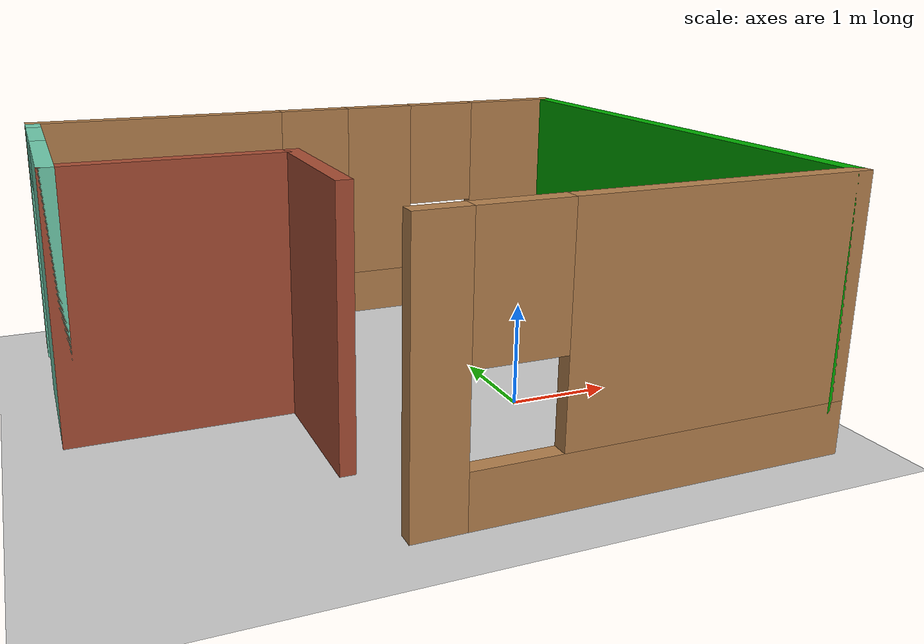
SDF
<sdf version="1.6">
 <world name="default">
  <light name="sun" type="directional">
   <pose>0 0 10 0 -0 0</pose>
   <diffuse>0.8 0.8 0.8 1</diffuse>
   <specular>0.2 0.2 0.2 1</specular>
   <attenuation>
    <range>1000</range>
    <constant>0.9</constant>
    <linear>0.01</linear>
    <quadratic>0.001</quadratic>
   </attenuation>
   <direction>-0.5 0.1 -0.9</direction>
  </light>
  <model name="ground_plane">
   <static>1</static>
   <link name="link">
    <collision name="collision">
     <geometry><plane><normal>0 0 1</normal><size>100 100</size></plane></geometry>
     <surface><friction><ode><mu>100</mu><mu2>50</mu2></ode></friction></surface>
    </collision>
    <visual name="visual">
     <cast_shadows>0</cast_shadows>
     <geometry><plane><normal>0 0 1</normal><size>100 100</size></plane></geometry>
     <material>
      <script><uri>file://media/materials/scripts/gazebo.material</uri><name>Gazebo/Grey</name></script>
     </material>
    </visual>
   </link>
  </model>
  <gravity>0 0 -9.8</gravity>
  <magnetic_field>6e-06 2.3e-05 -4.2e-05</magnetic_field>
  <atmosphere type="adiabatic"/>
  <physics name="default_physics" default="0" type="ode">
   <max_step_size>0.001</max_step_size>
   <real_time_factor>1</real_time_factor>
   <real_time_update_rate>1000</real_time_update_rate>
  </physics>
  <scene><ambient>0.4 0.4 0.4 1</ambient><background>0.7 0.7 0.7 1</background><shadows>1</shadows></scene>
  <spherical_coordinates>
   <surface_model>EARTH_WGS84</surface_model>
   <latitude_deg>0</latitude_deg>
   <longitude_deg>0</longitude_deg>
   <elevation>0</elevation>
   <heading_deg>0</heading_deg>
  </spherical_coordinates>
  <model name="CustomBuilding">
   <pose>-1.03 0.67 0 0 -0 0</pose>
   <link name="Wall_0">
    <pose>1.125 -2.55 0 0 -0 0</pose>
    <visual name="Wall_0_Visual_0">
     <pose>-1.7625 0 1.25 0 -0 0</pose>
     <geometry><box><size>0.475 0.15 2.5</size></box></geometry>
     <material>
      <script><uri>file://media/materials/scripts/gazebo.material</uri><name>Gazebo/Wood</name></script>
      <ambient>0.996078 0.47451 0.0196078 1</ambient>
     </material>
     <meta><layer>0</layer></meta>
    </visual>
    <collision name="Wall_0_Collision_0">
     <geometry><box><size>0.475 0.15 2.5</size></box></geometry>
     <pose>-1.7625 0 1.25 0 -0 0</pose>
    </collision>
    <visual name="Wall_0_Visual_1">
     <pose>0.2375 0 0.25 0 -0 0</pose>
     <geometry><box><size>3.525 0.15 0.5</size></box></geometry>
     <material>
      <script><uri>file://media/materials/scripts/gazebo.material</uri><name>Gazebo/Wood</name></script>
      <ambient>0.996078 0.47451 0.0196078 1</ambient>
     </material>
     <meta><layer>0</layer></meta>
    </visual>
    <collision name="Wall_0_Collision_1">
     <geometry><box><size>3.525 0.15 0.5</size></box></geometry>
     <pose>0.2375 0 0.25 0 -0 0</pose>
    </collision>
    <visual name="Wall_0_Visual_2">
     <pose>0.6375 0 1.5 0 -0 0</pose>
     <geometry><box><size>2.725 0.15 2</size></box></geometry>
     <material>
      <script><uri>file://media/materials/scripts/gazebo.material</uri><name>Gazebo/Wood</name></script>
      <ambient>0.996078 0.47451 0.0196078 1</ambient>
     </material>
     <meta><layer>0</layer></meta>
    </visual>
    <collision name="Wall_0_Collision_2">
     <geometry><box><size>2.725 0.15 2</size></box></geometry>
     <pose>0.6375 0 1.5 0 -0 0</pose>
    </collision>
    <visual name="Wall_0_Visual_3">
     <pose>-1.125 0 1.9 0 -0 0</pose>
     <geometry><box><size>0.8 0.15 1.2</size></box></geometry>
     <material>
      <script><uri>file://media/materials/scripts/gazebo.material</uri><name>Gazebo/Wood</name></script>
      <ambient>0.996078 0.47451 0.0196078 1</ambient>
     </material>
     <meta><layer>0</layer></meta>
    </visual>
    <collision name="Wall_0_Collision_3">
     <geometry><box><size>0.8 0.15 1.2</size></box></geometry>
     <pose>-1.125 0 1.9 0 -0 0</pose>
    </collision>
   </link>
   <link name="Wall_10">
    <collision name="Wall_10_Collision">
     <geometry><box><size>1.5 0.15 2.5</size></box></geometry>
     <pose>0 0 1.25 0 -0 0</pose>
    </collision>
    <visual name="Wall_10_Visual">
     <pose>0 0 1.25 0 -0 0</pose>
     <geometry><box><size>1.5 0.15 2.5</size></box></geometry>
     <material>
      <script><uri>file://media/materials/scripts/gazebo.material</uri><name>Gazebo/Bricks</name></script>
      <ambient>1 1 1 1</ambient>
     </material>
     <meta><layer>0</layer></meta>
    </visual>
    <pose>-0.95 -0.725 0 0 0 -1.5708</pose>
   </link>
   <link name="Wall_5">
    <collision name="Wall_5_Collision">
     <geometry><box><size>5.25 0.15 2.5</size></box></geometry>
     <pose>0 0 1.25 0 -0 0</pose>
    </collision>
    <visual name="Wall_5_Visual">
     <pose>0 0 1.25 0 -0 0</pose>
     <geometry><box><size>5.25 0.15 2.5</size></box></geometry>
     <material>
      <script><uri>file://media/materials/scripts/gazebo.material</uri><name>Gazebo/Grey</name></script>
      <ambient>0 0.666667 0 1</ambient>
     </material>
     <meta><layer>0</layer></meta>
    </visual>
    <pose>3.05 0 0 0 -0 1.5708</pose>
   </link>
   <link name="Wall_7">
    <pose>0 2.55 0 0 -0 3.14159</pose>
    <visual name="Wall_7_Visual_0">
     <pose>-2.5725 0 1.25 0 -0 0</pose>
     <geometry><box><size>1.105 0.15 2.5</size></box></geometry>
     <material>
      <script><uri>file://media/materials/scripts/gazebo.material</uri><name>Gazebo/Wood</name></script>
      <ambient>1 1 1 1</ambient>
     </material>
     <meta><layer>0</layer></meta>
    </visual>
    <collision name="Wall_7_Collision_0">
     <geometry><box><size>1.105 0.15 2.5</size></box></geometry>
     <pose>-2.5725 0 1.25 0 -0 0</pose>
    </collision>
    <visual name="Wall_7_Visual_1">
     <pose>0.5525 0 0.25 0 -0 0</pose>
     <geometry><box><size>5.145 0.15 0.5</size></box></geometry>
     <material>
      <script><uri>file://media/materials/scripts/gazebo.material</uri><name>Gazebo/Wood</name></script>
      <ambient>1 1 1 1</ambient>
     </material>
     <meta><layer>0</layer></meta>
    </visual>
    <collision name="Wall_7_Collision_1">
     <geometry><box><size>5.145 0.15 0.5</size></box></geometry>
     <pose>0.5525 0 0.25 0 -0 0</pose>
    </collision>
    <visual name="Wall_7_Visual_2">
     <pose>-0.825 0 1.5 0 -0 0</pose>
     <geometry><box><size>0.79 0.15 2</size></box></geometry>
     <material>
      <script><uri>file://media/materials/scripts/gazebo.material</uri><name>Gazebo/Wood</name></script>
      <ambient>1 1 1 1</ambient>
     </material>
     <meta><layer>0</layer></meta>
    </visual>
    <collision name="Wall_7_Collision_2">
     <geometry><box><size>0.79 0.15 2</size></box></geometry>
     <pose>-0.825 0 1.5 0 -0 0</pose>
    </collision>
    <visual name="Wall_7_Visual_3">
     <pose>1.7475 0 1.5 0 -0 0</pose>
     <geometry><box><size>2.755 0.15 2</size></box></geometry>
     <material>
      <script><uri>file://media/materials/scripts/gazebo.material</uri><name>Gazebo/Wood</name></script>
      <ambient>1 1 1 1</ambient>
     </material>
     <meta><layer>0</layer></meta>
    </visual>
    <collision name="Wall_7_Collision_3">
     <geometry><box><size>2.755 0.15 2</size></box></geometry>
     <pose>1.7475 0 1.5 0 -0 0</pose>
    </collision>
    <visual name="Wall_7_Visual_4">
     <pose>-1.62 0 1.9 0 -0 0</pose>
     <geometry><box><size>0.8 0.15 1.2</size></box></geometry>
     <material>
      <script><uri>file://media/materials/scripts/gazebo.material</uri><name>Gazebo/Wood</name></script>
      <ambient>1 1 1 1</ambient>
     </material>
     <meta><layer>0</layer></meta>
    </visual>
    <collision name="Wall_7_Collision_4">
     <geometry><box><size>0.8 0.15 1.2</size></box></geometry>
     <pose>-1.62 0 1.9 0 -0 0</pose>
    </collision>
    <visual name="Wall_7_Visual_5">
     <pose>-0.03 0 1.9 0 -0 0</pose>
     <geometry><box><size>0.8 0.15 1.2</size></box></geometry>
     <material>
      <script><uri>file://media/materials/scripts/gazebo.material</uri><name>Gazebo/Wood</name></script>
      <ambient>1 1 1 1</ambient>
     </material>
     <meta><layer>0</layer></meta>
    </visual>
    <collision name="Wall_7_Collision_5">
     <geometry><box><size>0.8 0.15 1.2</size></box></geometry>
     <pose>-0.03 0 1.9 0 -0 0</pose>
    </collision>
   </link>
   <link name="Wall_8">
    <pose>-3.05 1.25 0 0 0 -1.5708</pose>
    <visual name="Wall_8_Visual_0">
     <pose>-1.1775 0 1.25 0 -0 0</pose>
     <geometry><box><size>0.395 0.15 2.5</size></box></geometry>
     <material>
      <script><uri>file://media/materials/scripts/gazebo.material</uri><name>Gazebo/Grey</name></script>
      <ambient>0.435294 0.796078 0.67451 1</ambient>
     </material>
     <meta><layer>0</layer></meta>
    </visual>
    <collision name="Wall_8_Collision_0">
     <geometry><box><size>0.395 0.15 2.5</size></box></geometry>
     <pose>-1.1775 0 1.25 0 -0 0</pose>
    </collision>
    <visual name="Wall_8_Visual_1">
     <pose>0.6475 0 1.25 0 -0 0</pose>
     <geometry><box><size>1.455 0.15 2.5</size></box></geometry>
     <material>
      <script><uri>file://media/materials/scripts/gazebo.material</uri><name>Gazebo/Grey</name></script>
      <ambient>0.435294 0.796078 0.67451 1</ambient>
     </material>
     <meta><layer>0</layer></meta>
    </visual>
    <collision name="Wall_8_Collision_1">
     <geometry><box><size>1.455 0.15 2.5</size></box></geometry>
     <pose>0.6475 0 1.25 0 -0 0</pose>
    </collision>
    <visual name="Wall_8_Visual_2">
     <pose>-0.53 0 2.25 0 -0 0</pose>
     <geometry><box><size>0.9 0.15 0.5</size></box></geometry>
     <material>
      <script><uri>file://media/materials/scripts/gazebo.material</uri><name>Gazebo/Grey</name></script>
      <ambient>0.435294 0.796078 0.67451 1</ambient>
     </material>
     <meta><layer>0</layer></meta>
    </visual>
    <collision name="Wall_8_Collision_2">
     <geometry><box><size>0.9 0.15 0.5</size></box></geometry>
     <pose>-0.53 0 2.25 0 -0 0</pose>
    </collision>
   </link>
   <link name="Wall_9">
    <collision name="Wall_9_Collision">
     <geometry><box><size>2.25 0.15 2.5</size></box></geometry>
     <pose>0 0 1.25 0 -0 0</pose>
    </collision>
    <visual name="Wall_9_Visual">
     <pose>0 0 1.25 0 -0 0</pose>
     <geometry><box><size>2.25 0.15 2.5</size></box></geometry>
     <material>
      <script><uri>file://media/materials/scripts/gazebo.material</uri><name>Gazebo/Bricks</name></script>
      <ambient>1 1 1 1</ambient>
     </material>
     <meta><layer>0</layer></meta>
    </visual>
    <pose>-2 -0.05 0 0 -0 0</pose>
   </link>
   <static>1</static>
  </model>
  <model name="cabinet">
   <static>1</static>
   <link name="cabinet_bottom_plate">
    <inertial>
     <pose>0 0 -1 0 -0 0</pose>
     <inertia><ixx>2.05</ixx><ixy>0</ixy><ixz>0</ixz><iyy>2.05</iyy><iyz>0</iyz><izz>2.05</izz></inertia>
     <mass>25</mass>
    </inertial>
    <collision name="cabinet_bottom_plate_geom">
     <pose>0 0 0.01 0 -0 0</pose>
     <geometry><box><size>0.45 0.45 0.02</size></box></geometry>
    </collision>
    <visual name="cabinet_bottom_plate_geom_visual">
     <pose>0 0 0.01 0 -0 0</pose>
     <geometry><box><size>0.45 0.45 0.02</size></box></geometry>
     <material>
      <script><uri>file://media/materials/scripts/gazebo.material</uri><name>Gazebo/Wood</name></script>
     </material>
    </visual>
    <collision name="cabinet_bottom_plate_geom_cabinet_back_plate">
     <pose>0.235 0 0.51 0 -0 0</pose>
     <geometry><box><size>0.02 0.45 1.02</size></box></geometry>
    </collision>
    <visual name="cabinet_bottom_plate_geom_cabinet_back_plate_visual">
     <pose>0.235 0 0.51 0 -0 0</pose>
     <geometry><box><size>0.02 0.45 1.02</size></box></geometry>
     <material>
      <script><uri>file://media/materials/scripts/gazebo.material</uri><name>Gazebo/Wood</name></script>
     </material>
    </visual>
    <collision name="cabinet_bottom_plate_geom_cabinet_left_plate">
     <pose>0 0.235 0.51 0 -0 0</pose>
     <geometry><box><size>0.45 0.02 1.02</size></box></geometry>
    </collision>
    <visual name="cabinet_bottom_plate_geom_cabinet_left_plate_visual">
     <pose>0 0.235 0.51 0 -0 0</pose>
     <geometry><box><size>0.45 0.02 1.02</size></box></geometry>
     <material>
      <script><uri>file://media/materials/scripts/gazebo.material</uri><name>Gazebo/Wood</name></script>
     </material>
    </visual>
    <collision name="cabinet_bottom_plate_geom_cabinet_middle_plate">
     <pose>0 0 0.51 0 -0 0</pose>
     <geometry><box><size>0.45 0.45 0.02</size></box></geometry>
    </collision>
    <visual name="cabinet_bottom_plate_geom_cabinet_middle_plate_visual">
     <pose>0 0 0.51 0 -0 0</pose>
     <geometry><box><size>0.45 0.45 0.02</size></box></geometry>
     <material>
      <script><uri>file://media/materials/scripts/gazebo.material</uri><name>Gazebo/Wood</name></script>
     </material>
    </visual>
    <collision name="cabinet_bottom_plate_geom_cabinet_right_plate">
     <pose>0 -0.235 0.51 0 -0 0</pose>
     <geometry><box><size>0.45 0.02 1.02</size></box></geometry>
    </collision>
    <visual name="cabinet_bottom_plate_geom_cabinet_right_plate_visual">
     <pose>0 -0.235 0.51 0 -0 0</pose>
     <geometry><box><size>0.45 0.02 1.02</size></box></geometry>
     <material>
      <script><uri>file://media/materials/scripts/gazebo.material</uri><name>Gazebo/Wood</name></script>
     </material>
    </visual>
    <collision name="cabinet_bottom_plate_geom_cabinet_top_plate">
     <pose>0 0 1.01 0 -0 0</pose>
     <geometry><box><size>0.45 0.45 0.02</size></box></geometry>
    </collision>
    <visual name="cabinet_bottom_plate_geom_cabinet_top_plate_visual">
     <pose>0 0 1.01 0 -0 0</pose>
     <geometry><box><size>0.45 0.45 0.02</size></box></geometry>
     <material>
      <script><uri>file://media/materials/scripts/gazebo.material</uri><name>Gazebo/Wood</name></script>
     </material>
    </visual>
   </link>
   <pose>1.5414 -1.51076 0 0 -0 0</pose>
  </model>
  <model name="bookshelf">
   <static>1</static>
   <link name="link">
    <inertial><mass>1</mass></inertial>
    <collision name="back">
     <pose>0 0.005 0.6 0 -0 0</pose>
     <geometry><box><size>0.9 0.01 1.2</size></box></geometry>
    </collision>
    <visual name="visual1">
     <pose>0 0.005 0.6 0 -0 0</pose>
     <geometry><box><size>0.9 0.01 1.2</size></box></geometry>
     <material>
      <script><uri>file://media/materials/scripts/gazebo.material</uri><name>Gazebo/Wood</name></script>
     </material>
    </visual>
    <collision name="left_side">
     <pose>0.45 -0.195 0.6 0 -0 0</pose>
     <geometry><box><size>0.02 0.4 1.2</size></box></geometry>
    </collision>
    <visual name="visual2">
     <pose>0.45 -0.195 0.6 0 -0 0</pose>
     <geometry><box><size>0.02 0.4 1.2</size></box></geometry>
     <material>
      <script><uri>file://media/materials/scripts/gazebo.material</uri><name>Gazebo/Wood</name></script>
     </material>
    </visual>
    <collision name="right_side">
     <pose>-0.45 -0.195 0.6 0 -0 0</pose>
     <geometry><box><size>0.02 0.4 1.2</size></box></geometry>
    </collision>
    <visual name="visual3">
     <pose>-0.45 -0.195 0.6 0 -0 0</pose>
     <geometry><box><size>0.02 0.4 1.2</size></box></geometry>
     <material>
      <script><uri>file://media/materials/scripts/gazebo.material</uri><name>Gazebo/Wood</name></script>
     </material>
    </visual>
    <collision name="bottom">
     <pose>0 -0.195 0.03 0 -0 0</pose>
     <geometry><box><size>0.88 0.4 0.06</size></box></geometry>
    </collision>
    <visual name="visual4">
     <pose>0 -0.195 0.03 0 -0 0</pose>
     <geometry><box><size>0.88 0.4 0.06</size></box></geometry>
     <material>
      <script><uri>file://media/materials/scripts/gazebo.material</uri><name>Gazebo/Wood</name></script>
     </material>
    </visual>
    <collision name="top">
     <pose>0 -0.195 1.19 0 -0 0</pose>
     <geometry><box><size>0.88 0.4 0.02</size></box></geometry>
    </collision>
    <visual name="visual5">
     <pose>0 -0.195 1.19 0 -0 0</pose>
     <geometry><box><size>0.88 0.4 0.02</size></box></geometry>
     <material>
      <script><uri>file://media/materials/scripts/gazebo.material</uri><name>Gazebo/Wood</name></script>
     </material>
    </visual>
    <collision name="low_shelf">
     <pose>0 -0.195 0.43 0 -0 0</pose>
     <geometry><box><size>0.88 0.4 0.02</size></box></geometry>
    </collision>
    <visual name="visual6">
     <pose>0 -0.195 0.43 0 -0 0</pose>
     <geometry><box><size>0.88 0.4 0.02</size></box></geometry>
     <material>
      <script><uri>file://media/materials/scripts/gazebo.material</uri><name>Gazebo/Wood</name></script>
     </material>
    </visual>
    <collision name="high_shelf">
     <pose>0 -0.195 0.8 0 -0 0</pose>
     <geometry><box><size>0.88 0.4 0.02</size></box></geometry>
    </collision>
    <visual name="visual7">
     <pose>0 -0.195 0.8 0 -0 0</pose>
     <geometry><box><size>0.88 0.4 0.02</size></box></geometry>
     <material>
      <script><uri>file://media/materials/scripts/gazebo.material</uri><name>Gazebo/Wood</name></script>
     </material>
    </visual>
   </link>
   <pose>0 1.43591 0 0 -0 0</pose>
  </model>
 </world>
</sdf>
